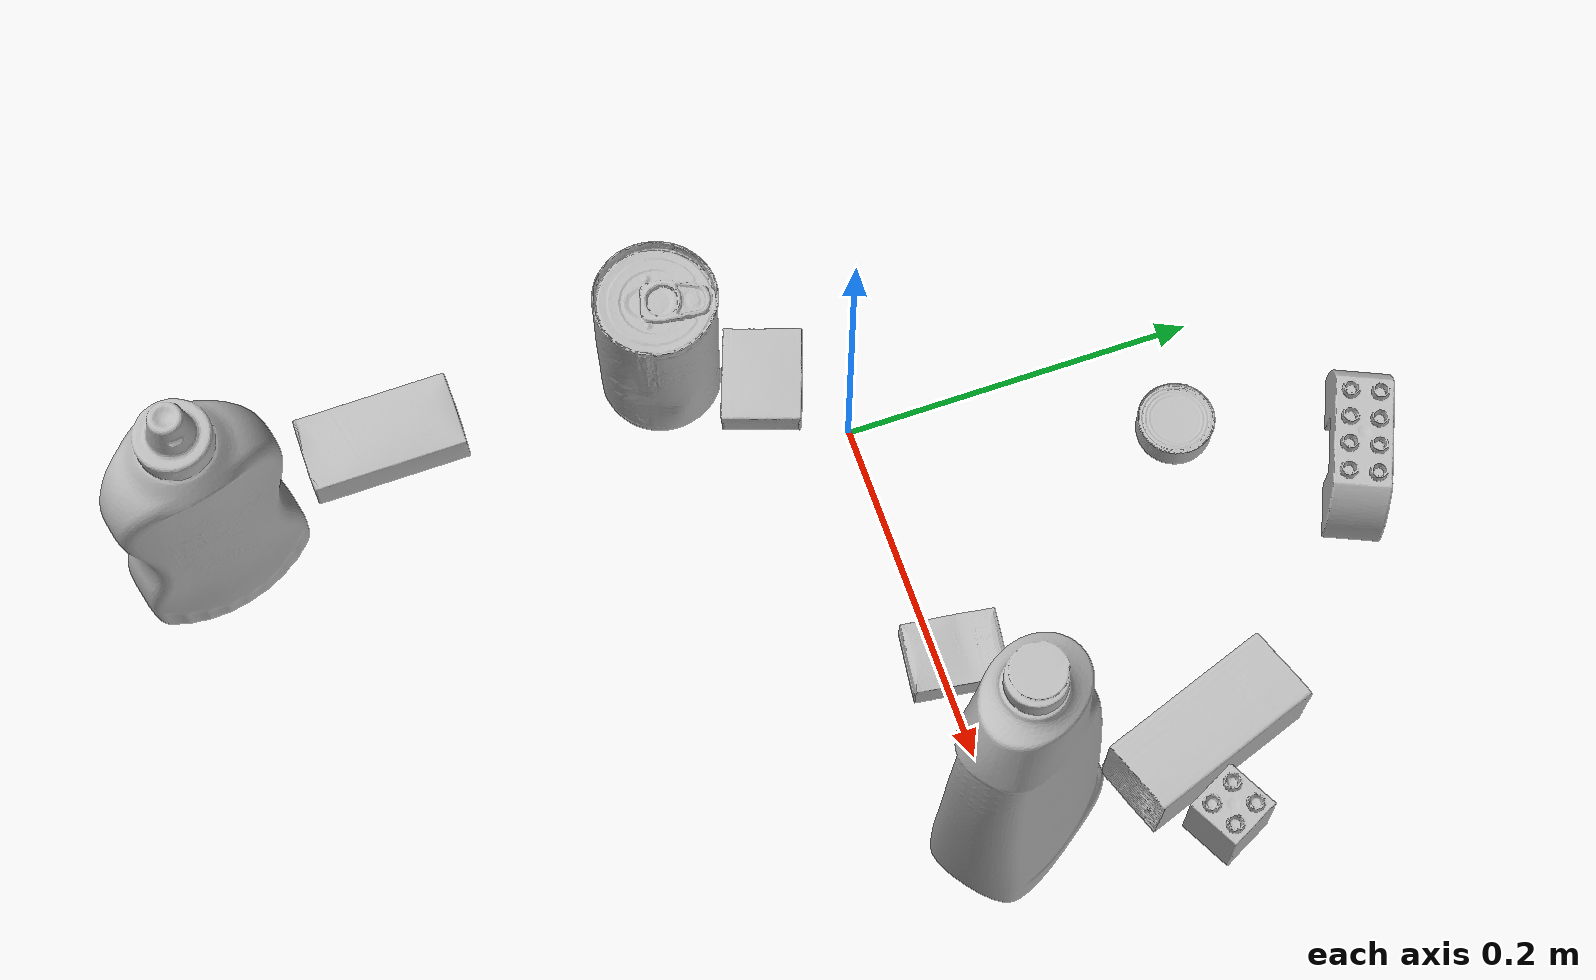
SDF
<sdf version="1.4">
  <world name="default">
    <light name="light1" type="point">
      <pose>0 0 1 0 0 0</pose>
      <diffuse>3 3 3 1</diffuse>
      <specular>3 3 3 1</specular>
    </light>
    <light name="light2" type="point">
      <pose>0 0.5 2 0 0 0</pose>
      <diffuse>1 1 1 1</diffuse>
      <specular>1 1 1 1</specular>
    </light>
    <light name="light3" type="point">
      <pose>0 0.5 2 0 0 0</pose>
      <diffuse>3 3 3 1</diffuse>
      <specular>3 3 3 1</specular>
    </light>
    <scene>
      <ambient>0.7 0.7 0.7</ambient>
    </scene>
    <model name="bottle1">
      <link name="link_bottle1">
        <collision name="default">
          <geometry>
            <mesh>
              <uri>model://bleach_cleanser/collision_meshes/collision.obj</uri>
              <scale>1.0 1.0 1.0</scale>
            </mesh>
          </geometry>
          <surface>
            <friction>
              <ode>
                <mu>0.5</mu>
                <mu2>0.5</mu2>
              </ode>
            </friction>
          <contact>
        <ode>
            <max_vel>0</max_vel>
            <min_depth>0.0001</min_depth>
            <kp>1e8</kp>
        </ode>
    </contact></surface>
        </collision>
        <visual name="default">
          <geometry>
            <mesh>
              <uri>model://bleach_cleanser/visual_meshes/visual.dae</uri>
              <scale>1.0 1.0 1.0</scale>
            </mesh>
          </geometry>
        </visual>
        <inertial>
          <mass>0.7954697608947754</mass>
          <pose>0.00012193184375064448 0.0037838825955986977 -0.02442161552608013 -0.0738167061583634 0.000420116841178447 -0.006875049257496471</pose>
          <inertia>
            <ixx>0.003871667</ixx>
            <iyy>0.0036078263</iyy>
            <izz>0.00066195446</izz>
            <ixy>0</ixy>
            <ixz>0</ixz>
            <iyz>0</iyz>
          </inertia>
        </inertial>
      </link>
      <pose>0.23787111043930054 0.007777747698128223 0.12578415870666504 -0.00020031549877734599 1.659275046056957e-05 -2.493623818069882</pose>
    </model>
    <model name="bottle2">
      <link name="link_bottle2">
        <collision name="default">
          <geometry>
            <mesh>
              <uri>model://mustard_bottle/collision_meshes/collision.obj</uri>
              <scale>1.0 1.0 1.0</scale>
            </mesh>
          </geometry>
          <surface>
            <friction>
              <ode>
                <mu>0.5</mu>
                <mu2>0.5</mu2>
              </ode>
            </friction>
          <contact>
        <ode>
            <max_vel>0</max_vel>
            <min_depth>0.0001</min_depth>
            <kp>1e8</kp>
        </ode>
    </contact></surface>
        </collision>
        <visual name="default">
          <geometry>
            <mesh>
              <uri>model://mustard_bottle/visual_meshes/visual.dae</uri>
              <scale>1.0 1.0 1.0</scale>
            </mesh>
          </geometry>
        </visual>
        <inertial>
          <mass>0.5118113160133362</mass>
          <pose>0.0005032453336752951 -0.00015647397958673537 -0.017475785687565804 0.0004182313596805905 0.000946575919178121 0.024853765212265823</pose>
          <inertia>
            <ixx>0.00142123</ixx>
            <iyy>0.0012470091</iyy>
            <izz>0.0003745659</izz>
            <ixy>0</ixy>
            <ixz>0</ixz>
            <iyz>0</iyz>
          </inertia>
        </inertial>
      </link>
      <pose>-0.038673095405101776 -0.3468698263168335 0.09583090245723724 -0.012050702277367788 -0.004889893025338961 0.24233365042625962</pose>
    </model>
    <model name="toy1">
      <link name="link_toy1">
        <collision name="default">
          <geometry>
            <mesh>
              <uri>model://b_lego_duplo/collision_meshes/collision.obj</uri>
              <scale>1.0 1.0 1.0</scale>
            </mesh>
          </geometry>
          <surface>
            <friction>
              <ode>
                <mu>0.5</mu>
                <mu2>0.5</mu2>
              </ode>
            </friction>
          <contact>
        <ode>
            <max_vel>0</max_vel>
            <min_depth>0.0001</min_depth>
            <kp>1e8</kp>
        </ode>
    </contact></surface>
        </collision>
        <visual name="default">
          <geometry>
            <mesh>
              <uri>model://b_lego_duplo/visual_meshes/visual.dae</uri>
              <scale>1.0 1.0 1.0</scale>
            </mesh>
          </geometry>
        </visual>
        <inertial>
          <mass>0.04622781649231911</mass>
          <pose>-0.00011053043272113428 -9.152668098977301e-06 0.0019294294761493802 -0.037494565787594906 -0.026354503997733224 0.45188645636516256</pose>
          <inertia>
            <ixx>9.46087e-06</ixx>
            <iyy>9.524471e-06</iyy>
            <izz>8.429326e-06</izz>
            <ixy>0</ixy>
            <ixz>0</ixz>
            <iyz>0</iyz>
          </inertia>
        </inertial>
      </link>
      <pose>0.27909207344055176 0.11191379278898239 0.021815000101923943 2.8462666716694463e-08 9.134498103132992e-07 2.0408878887864237</pose>
    </model>
    <model name="toy2">
      <link name="link_toy2">
        <collision name="default">
          <geometry>
            <mesh>
              <uri>model://e_lego_duplo/collision_meshes/collision.obj</uri>
              <scale>1.0 1.0 1.0</scale>
            </mesh>
          </geometry>
          <surface>
            <friction>
              <ode>
                <mu>0.5</mu>
                <mu2>0.5</mu2>
              </ode>
            </friction>
          <contact>
        <ode>
            <max_vel>0</max_vel>
            <min_depth>0.0001</min_depth>
            <kp>1e8</kp>
        </ode>
    </contact></surface>
        </collision>
        <visual name="default">
          <geometry>
            <mesh>
              <uri>model://e_lego_duplo/visual_meshes/visual.dae</uri>
              <scale>1.0 1.0 1.0</scale>
            </mesh>
          </geometry>
        </visual>
        <inertial>
          <mass>0.08809097856283188</mass>
          <pose>0.00032560486579313874 0.00023485404381062835 0.0019521467620506883 -0.022567425824888195 -6.82459351116558e-05 -0.007625145117383363</pose>
          <inertia>
            <ixx>1.836988e-05</ixx>
            <iyy>7.539474e-05</iyy>
            <izz>7.34193e-05</izz>
            <ixy>0</ixy>
            <ixz>0</ixz>
            <iyz>0</iyz>
          </inertia>
        </inertial>
      </link>
      <pose>0.10677138715982437 0.2578768730163574 0.021808622404932976 0.00019327571922306695 -5.617373826121799e-05 -0.41800085452746066</pose>
    </model>
    <model name="can1">
      <link name="link_can1">
        <collision name="default">
          <geometry>
            <mesh>
              <uri>model://tomato_soup_can/collision_meshes/collision.obj</uri>
              <scale>1.0 1.0 1.0</scale>
            </mesh>
          </geometry>
          <surface>
            <friction>
              <ode>
                <mu>0.5</mu>
                <mu2>0.5</mu2>
              </ode>
            </friction>
          <contact>
        <ode>
            <max_vel>0</max_vel>
            <min_depth>0.0001</min_depth>
            <kp>1e8</kp>
        </ode>
    </contact></surface>
        </collision>
        <visual name="default">
          <geometry>
            <mesh>
              <uri>model://tomato_soup_can/visual_meshes/visual.dae</uri>
              <scale>1.0 1.0 1.0</scale>
            </mesh>
          </geometry>
        </visual>
        <inertial>
          <mass>0.4347945749759674</mass>
          <pose>0.0001265227037947625 0.00010805525380419567 -0.0017973979702219367 0.007020064127759274 0.0004229940757469139 -0.009903323281130803</pose>
          <inertia>
            <ixx>0.00047671542</ixx>
            <iyy>0.00047396024</iyy>
            <izz>0.00024707714</izz>
            <ixy>0</ixy>
            <ixz>0</ixz>
            <iyz>0</iyz>
          </inertia>
        </inertial>
      </link>
      <pose>-0.06522609293460846 -0.08776871114969254 0.05127402022480965 -5.774275762761971e-07 -6.356469630394098e-07 2.585489095695806</pose>
    </model>
    <model name="can2">
      <link name="link_can2">
        <collision name="default">
          <geometry>
            <mesh>
              <uri>model://tuna_fish_can/collision_meshes/collision.obj</uri>
              <scale>0.5 0.5 0.5</scale>
            </mesh>
          </geometry>
          <surface>
            <friction>
              <ode>
                <mu>0.5</mu>
                <mu2>0.5</mu2>
              </ode>
            </friction>
          <contact>
        <ode>
            <max_vel>0</max_vel>
            <min_depth>0.0001</min_depth>
            <kp>1e8</kp>
        </ode>
    </contact></surface>
        </collision>
        <visual name="default">
          <geometry>
            <mesh>
              <uri>model://tuna_fish_can/visual_meshes/visual.dae</uri>
              <scale>0.5 0.5 0.5</scale>
            </mesh>
          </geometry>
        </visual>
        <inertial>
          <mass>0.02951119653880596</mass>
          <pose>-2.0361847418826073e-05 -7.256335720740026e-06 -0.0005269026733003557 -0.0017944763161136105 0.00017161533088142807 0.2405366956082085</pose>
          <inertia>
            <ixx>3.989958e-06</ixx>
            <iyy>3.9733272e-06</iyy>
            <izz>6.827389e-06</izz>
            <ixy>0</ixy>
            <ixz>0</ixz>
            <iyz>0</iyz>
          </inertia>
        </inertial>
      </link>
      <pose>0.05750147998332977 0.1706962287425995 0.00851999782025814 2.895857805895047e-08 4.827771017875204e-09 1.1000101427005173</pose>
    </model>
    <model name="box1">
      <link name="link_box1">
        <collision name="default">
          <geometry>
            <mesh>
              <uri>model://sugar_box/collision_meshes/collision.obj</uri>
              <scale>0.5 0.5 0.5</scale>
            </mesh>
          </geometry>
          <surface>
            <friction>
              <ode>
                <mu>0.5</mu>
                <mu2>0.5</mu2>
              </ode>
            </friction>
          <contact>
        <ode>
            <max_vel>0</max_vel>
            <min_depth>0.0001</min_depth>
            <kp>1e8</kp>
        </ode>
    </contact></surface>
        </collision>
        <visual name="default">
          <geometry>
            <mesh>
              <uri>model://sugar_box/visual_meshes/visual.dae</uri>
              <scale>0.5 0.5 0.5</scale>
            </mesh>
          </geometry>
        </visual>
        <inertial>
          <mass>0.10932230949401855</mass>
          <pose>0.0005171863595023751 1.924554817378521e-05 -0.00018182402709499002 -0.00040462630024242077 0.0010506636385781449 0.0026153787888990553</pose>
          <inertia>
            <ixx>2.277176e-05</ixx>
            <iyy>7.3603005e-05</iyy>
            <izz>8.811158e-05</izz>
            <ixy>0</ixy>
            <ixz>0</ixz>
            <iyz>0</iyz>
          </inertia>
        </inertial>
      </link>
      <pose>-0.07674577832221985 -0.24646399915218353 0.011399306356906891 0.0007748170575449152 -0.02343282898017299 1.5650024167849788</pose>
    </model>
    <model name="box2">
      <link name="link_box2">
        <collision name="default">
          <geometry>
            <mesh>
              <uri>model://pudding_box/collision_meshes/collision.obj</uri>
              <scale>0.5 0.5 0.5</scale>
            </mesh>
          </geometry>
          <surface>
            <friction>
              <ode>
                <mu>0.5</mu>
                <mu2>0.5</mu2>
              </ode>
            </friction>
          <contact>
        <ode>
            <max_vel>0</max_vel>
            <min_depth>0.0001</min_depth>
            <kp>1e8</kp>
        </ode>
    </contact></surface>
        </collision>
        <visual name="default">
          <geometry>
            <mesh>
              <uri>model://pudding_box/visual_meshes/visual.dae</uri>
              <scale>0.5 0.5 0.5</scale>
            </mesh>
          </geometry>
        </visual>
        <inertial>
          <mass>0.061322033405303955</mass>
          <pose>0.00024474109522998333 0.00040339428232982755 -0.0002594413817860186 0.0052131013423229325 -0.006603797777692156 0.020079823300565562</pose>
          <inertia>
            <ixx>1.733035e-05</ixx>
            <iyy>1.1659984e-05</iyy>
            <izz>2.559279e-05</izz>
            <ixy>0</ixy>
            <ixz>0</ixz>
            <iyz>0</iyz>
          </inertia>
        </inertial>
      </link>
      <pose>-0.04234398528933525 -0.03645864501595497 0.009862902574241161 0.022349314052562567 -0.011391215200909466 1.2220629661697138</pose>
    </model>
    <model name="box3">
      <link name="link_box3">
        <collision name="default">
          <geometry>
            <mesh>
              <uri>model://cracker_box/collision_meshes/collision.obj</uri>
              <scale>0.25 0.25 0.25</scale>
            </mesh>
          </geometry>
          <surface>
            <friction>
              <ode>
                <mu>0.5</mu>
                <mu2>0.5</mu2>
              </ode>
            </friction>
          <contact>
        <ode>
            <max_vel>0</max_vel>
            <min_depth>0.0001</min_depth>
            <kp>1e8</kp>
        </ode>
    </contact></surface>
        </collision>
        <visual name="default">
          <geometry>
            <mesh>
              <uri>model://cracker_box/visual_meshes/visual.dae</uri>
              <scale>0.25 0.25 0.25</scale>
            </mesh>
          </geometry>
        </visual>
        <inertial>
          <mass>0.05027599632740021</mass>
          <pose>0.00023660380975343287 6.358561222441494e-05 -0.00042573834070935845 -0.0003162076618733006 -0.011106490531610344 0.00254679570085012</pose>
          <inertia>
            <ixx>7.992481e-06</ixx>
            <iyy>1.3197154e-05</iyy>
            <izz>1.8833553e-05</izz>
            <ixy>0</ixy>
            <ixz>0</ixz>
            <iyz>0</iyz>
          </inertia>
        </inertial>
      </link>
      <pose>0.14505642652511597 0.008594886399805546 0.00912044569849968 -0.011788015731497153 -0.007367166879143754 -1.7046536704921815</pose>
    </model>
    <model name="box4">
      <link name="link_box4">
        <collision name="default">
          <geometry>
            <mesh>
              <uri>model://wood_block/collision_meshes/collision.obj</uri>
              <scale>0.5 0.5 0.5</scale>
            </mesh>
          </geometry>
          <surface>
            <friction>
              <ode>
                <mu>0.5</mu>
                <mu2>0.5</mu2>
              </ode>
            </friction>
          <contact>
        <ode>
            <max_vel>0</max_vel>
            <min_depth>0.0001</min_depth>
            <kp>1e8</kp>
        </ode>
    </contact></surface>
        </collision>
        <visual name="default">
          <geometry>
            <mesh>
              <uri>model://wood_block/visual_meshes/visual.dae</uri>
              <scale>0.5 0.5 0.5</scale>
            </mesh>
          </geometry>
        </visual>
        <inertial>
          <mass>0.30035653710365295</mass>
          <pose>-2.9066577553749084e-06 -0.000285404734313488 0.00013204291462898254 -0.05221128362191582 -0.005192695718477931 -0.0068613783725326285</pose>
          <inertia>
            <ixx>0.00010048062</ixx>
            <iyy>0.00031741828</iyy>
            <izz>0.00031623102</izz>
            <ixy>0</ixy>
            <ixz>0</ixz>
            <iyz>0</iyz>
          </inertia>
        </inertial>
      </link>
      <pose>0.2340582311153412 0.11653037369251251 0.02252746932208538 -0.01584979252666728 -0.00040161120533136537 -1.2285953271528598</pose>
    </model>
  <physics type="ode">
      <max_contacts>50</max_contacts>
      <ode>
        <solver>
          <type>quick</type>
          <iters>75</iters>
        </solver>
        <constraints>
          <contact_max_correcting_vel>0</contact_max_correcting_vel>
          <contact_surface_layer>0</contact_surface_layer>
        </constraints>
      </ode>
    </physics></world>
</sdf>
